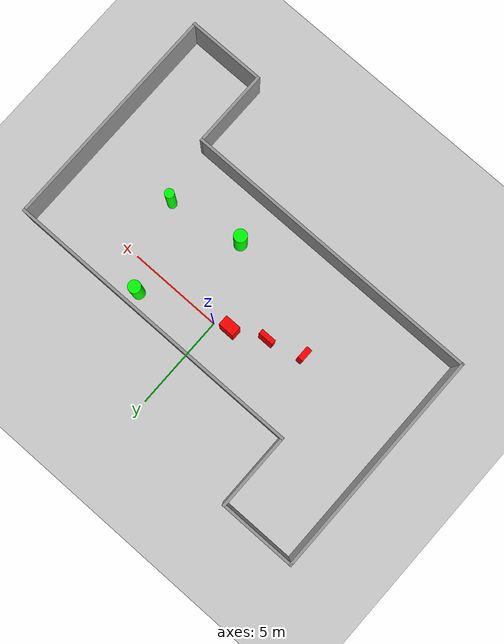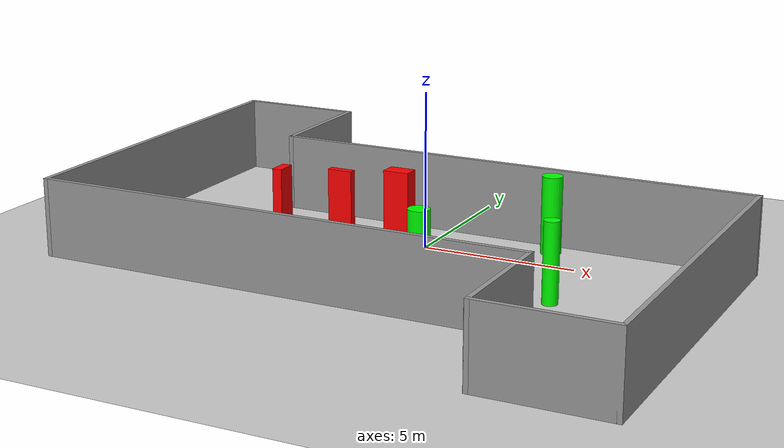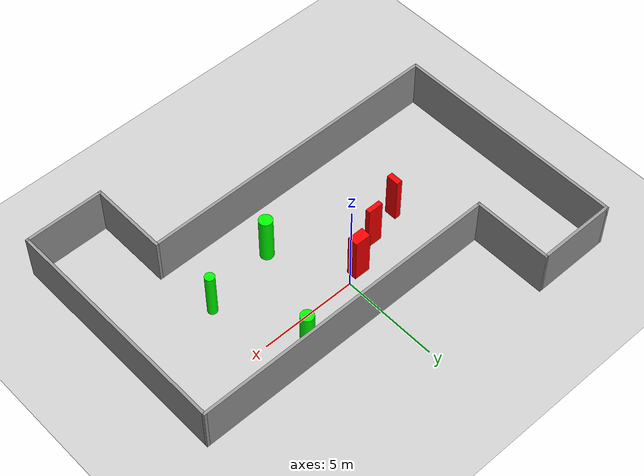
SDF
<sdf version="1.7">
 <world name="default">
  <light name="sun" type="directional">
   <pose>0 0 10 0 -0 0</pose>
   <diffuse>0.8 0.8 0.8 1</diffuse>
   <specular>0.2 0.2 0.2 1</specular>
   <attenuation>
    <range>1000</range>
    <constant>0.9</constant>
    <linear>0.01</linear>
    <quadratic>0.001</quadratic>
   </attenuation>
   <direction>-0.5 0.1 -0.9</direction>
   <spot><inner_angle>0</inner_angle><outer_angle>0</outer_angle><falloff>0</falloff></spot>
  </light>
  <model name="ground_plane">
   <static>1</static>
   <link name="link">
    <collision name="collision">
     <geometry><plane><normal>0 0 1</normal><size>100 100</size></plane></geometry>
     <surface>
      <contact><collide_bitmask>65535</collide_bitmask></contact>
      <friction><ode><mu>100</mu><mu2>50</mu2></ode></friction>
     </surface>
    </collision>
    <visual name="visual">
     <cast_shadows>0</cast_shadows>
     <geometry><plane><normal>0 0 1</normal><size>100 100</size></plane></geometry>
     <material>
      <script><uri>file://media/materials/scripts/gazebo.material</uri><name>Gazebo/Grey</name></script>
     </material>
    </visual>
   </link>
  </model>
  <gravity>0 0 -9.8</gravity>
  <magnetic_field>6e-06 2.3e-05 -4.2e-05</magnetic_field>
  <atmosphere type="adiabatic"/>
  <physics type="ode">
   <max_step_size>0.001</max_step_size>
   <real_time_factor>1</real_time_factor>
   <real_time_update_rate>1000</real_time_update_rate>
  </physics>
  <scene><ambient>0.4 0.4 0.4 1</ambient><background>0.7 0.7 0.7 1</background><shadows>1</shadows></scene>
  <spherical_coordinates>
   <surface_model>EARTH_WGS84</surface_model>
   <latitude_deg>0</latitude_deg>
   <longitude_deg>0</longitude_deg>
   <elevation>0</elevation>
   <heading_deg>0</heading_deg>
  </spherical_coordinates>
  <model name="my_base_walls">
   <link name="Wall_13">
    <collision name="Wall_13_Collision">
     <geometry><box><size>12.15 0.15 2.5</size></box></geometry>
     <pose>0 0 1.25 0 -0 0</pose>
    </collision>
    <visual name="Wall_13_Visual">
     <pose>0 0 1.25 0 -0 0</pose>
     <geometry><box><size>12.15 0.15 2.5</size></box></geometry>
     <material>
      <script><uri>file://media/materials/scripts/gazebo.material</uri><name>Gazebo/Grey</name></script>
      <ambient>1 1 1 1</ambient>
     </material>
     <meta><layer>0</layer></meta>
    </visual>
    <pose>10 -2 0 0 -0 1.5708</pose>
   </link>
   <link name="Wall_15">
    <collision name="Wall_15_Collision">
     <geometry><box><size>16.15 0.15 2.5</size></box></geometry>
     <pose>0 0 1.25 0 -0 0</pose>
    </collision>
    <visual name="Wall_15_Visual">
     <pose>0 0 1.25 0 -0 0</pose>
     <geometry><box><size>16.15 0.15 2.5</size></box></geometry>
     <material>
      <script><uri>file://media/materials/scripts/gazebo.material</uri><name>Gazebo/Grey</name></script>
      <ambient>1 1 1 1</ambient>
     </material>
     <meta><layer>0</layer></meta>
    </visual>
    <pose>2 4 0 0 -0 3.14159</pose>
   </link>
   <link name="Wall_17">
    <collision name="Wall_17_Collision">
     <geometry><box><size>4.15 0.15 2.5</size></box></geometry>
     <pose>0 0 1.25 0 -0 0</pose>
    </collision>
    <visual name="Wall_17_Visual">
     <pose>0 0 1.25 0 -0 0</pose>
     <geometry><box><size>4.15 0.15 2.5</size></box></geometry>
     <material>
      <script><uri>file://media/materials/scripts/gazebo.material</uri><name>Gazebo/Grey</name></script>
      <ambient>1 1 1 1</ambient>
     </material>
     <meta><layer>0</layer></meta>
    </visual>
    <pose>6 -6 0 0 -0 -1.5708</pose>
   </link>
   <link name="Wall_19">
    <collision name="Wall_19_Collision">
     <geometry><box><size>12.15 0.15 2.5</size></box></geometry>
     <pose>0 0 1.25 0 -0 0</pose>
    </collision>
    <visual name="Wall_19_Visual">
     <pose>0 0 1.25 0 -0 0</pose>
     <geometry><box><size>12.15 0.15 2.5</size></box></geometry>
     <material>
      <script><uri>file://media/materials/scripts/gazebo.material</uri><name>Gazebo/Grey</name></script>
      <ambient>1 1 1 1</ambient>
     </material>
     <meta><layer>0</layer></meta>
    </visual>
    <pose>-10 2 0 0 -0 1.5708</pose>
   </link>
   <link name="Wall_21">
    <collision name="Wall_21_Collision">
     <geometry><box><size>4.15 0.15 2.5</size></box></geometry>
     <pose>0 0 1.25 0 -0 0</pose>
    </collision>
    <visual name="Wall_21_Visual">
     <pose>0 0 1.25 0 -0 0</pose>
     <geometry><box><size>4.15 0.15 2.5</size></box></geometry>
     <material>
      <script><uri>file://media/materials/scripts/gazebo.material</uri><name>Gazebo/Grey</name></script>
      <ambient>1 1 1 1</ambient>
     </material>
     <meta><layer>0</layer></meta>
    </visual>
    <pose>-8 8 0 0 -0 0</pose>
   </link>
   <link name="Wall_23">
    <collision name="Wall_23_Collision">
     <geometry><box><size>4.15 0.15 2.5</size></box></geometry>
     <pose>0 0 1.25 0 -0 0</pose>
    </collision>
    <visual name="Wall_23_Visual">
     <pose>0 0 1.25 0 -0 0</pose>
     <geometry><box><size>4.15 0.15 2.5</size></box></geometry>
     <material>
      <script><uri>file://media/materials/scripts/gazebo.material</uri><name>Gazebo/Grey</name></script>
      <ambient>1 1 1 1</ambient>
     </material>
     <meta><layer>0</layer></meta>
    </visual>
    <pose>-6 6 0 0 -0 -1.5708</pose>
   </link>
   <link name="Wall_25">
    <collision name="Wall_25_Collision">
     <geometry><box><size>4.15 0.15 2.5</size></box></geometry>
     <pose>0 0 1.25 0 -0 0</pose>
    </collision>
    <visual name="Wall_25_Visual">
     <pose>0 0 1.25 0 -0 0</pose>
     <geometry><box><size>4.15 0.15 2.5</size></box></geometry>
     <material>
      <script><uri>file://media/materials/scripts/gazebo.material</uri><name>Gazebo/Grey</name></script>
      <ambient>1 1 1 1</ambient>
     </material>
     <meta><layer>0</layer></meta>
    </visual>
    <pose>8 -8 0 0 -0 0</pose>
   </link>
   <link name="Wall_9">
    <collision name="Wall_9_Collision">
     <geometry><box><size>16.15 0.15 2.5</size></box></geometry>
     <pose>0 0 1.25 0 -0 0</pose>
    </collision>
    <visual name="Wall_9_Visual">
     <pose>0 0 1.25 0 -0 0</pose>
     <geometry><box><size>16.15 0.15 2.5</size></box></geometry>
     <material>
      <script><uri>file://media/materials/scripts/gazebo.material</uri><name>Gazebo/Grey</name></script>
      <ambient>1 1 1 1</ambient>
     </material>
     <meta><layer>0</layer></meta>
    </visual>
    <pose>-2 -4 0 0 -0 3.14159</pose>
   </link>
   <static>1</static>
   <pose>-0 -2 0 0 -0 0</pose>
  </model>
  <model name="cylinder1">
   <static>1</static>
   <link name="link">
    <inertial>
     <mass>1</mass>
     <inertia><ixx>0.5</ixx><ixy>0</ixy><ixz>0</ixz><iyy>0.5</iyy><iyz>0</iyz><izz>1</izz></inertia>
    </inertial>
    <collision name="collision">
     <geometry><cylinder><radius>0.24292780252079896</radius><length>2.5</length></cylinder></geometry>
    </collision>
    <visual name="visual">
     <geometry><cylinder><radius>0.24292780252079896</radius><length>2.5</length></cylinder></geometry>
     <material>
      <ambient>0 1 0 1</ambient>
      <diffuse>0 1 0 1</diffuse>
      <specular>0.1 0.1 0.1 1</specular>
      <emissive>0 0 0 0</emissive>
     </material>
    </visual>
   </link>
   <pose>5.44232578930327 -3.0691274961870283 1.25 0 0 0</pose>
  </model>
  <model name="cylinder2">
   <static>1</static>
   <link name="link">
    <inertial>
     <mass>1</mass>
     <inertia><ixx>0.5</ixx><ixy>0</ixy><ixz>0</ixz><iyy>0.5</iyy><iyz>0</iyz><izz>1</izz></inertia>
    </inertial>
    <collision name="collision">
     <geometry><cylinder><radius>0.33869346215106433</radius><length>2.5</length></cylinder></geometry>
    </collision>
    <visual name="visual">
     <geometry><cylinder><radius>0.33869346215106433</radius><length>2.5</length></cylinder></geometry>
     <material>
      <ambient>0 1 0 1</ambient>
      <diffuse>0 1 0 1</diffuse>
      <specular>0.1 0.1 0.1 1</specular>
      <emissive>0 0 0 0</emissive>
     </material>
    </visual>
   </link>
   <pose>1.6153682254896031 -3.7646814064593848 1.25 0 0 0</pose>
  </model>
  <model name="cylinder3">
   <static>1</static>
   <link name="link">
    <inertial>
     <mass>1</mass>
     <inertia><ixx>0.5</ixx><ixy>0</ixy><ixz>0</ixz><iyy>0.5</iyy><iyz>0</iyz><izz>1</izz></inertia>
    </inertial>
    <collision name="collision">
     <geometry><cylinder><radius>0.3257460200702094</radius><length>2.5</length></cylinder></geometry>
    </collision>
    <visual name="visual">
     <geometry><cylinder><radius>0.3257460200702094</radius><length>2.5</length></cylinder></geometry>
     <material>
      <ambient>0 1 0 1</ambient>
      <diffuse>0 1 0 1</diffuse>
      <specular>0.1 0.1 0.1 1</specular>
      <emissive>0 0 0 0</emissive>
     </material>
    </visual>
   </link>
   <pose>3.733301639598624 1.2771108374629812 1.25 0 0 0</pose>
  </model>
  <model name="box1">
   <static>1</static>
   <link name="link">
    <inertial>
     <mass>1</mass>
     <inertia><ixx>0.083</ixx><ixy>0</ixy><ixz>0</ixz><iyy>0.083</iyy><iyz>0</iyz><izz>0.083</izz></inertia>
    </inertial>
    <collision name="collision">
     <geometry><box><size>0.8420015228084117 0.5367748580917884 2.5</size></box></geometry>
    </collision>
    <visual name="visual">
     <geometry><box><size>0.8420015228084117 0.5367748580917884 2.5</size></box></geometry>
     <material>
      <ambient>1 0 0 1</ambient>
      <diffuse>1 0 0 1</diffuse>
      <specular>0.1 0.1 0.1 1</specular>
      <emissive>0 0 0 0</emissive>
     </material>
    </visual>
    <sensor name="my_contact" type="contact">
     <contact><collision>box_collision</collision><topic>__default_topic__</topic></contact>
    </sensor>
   </link>
   <pose>-0.7830659545212892 -0.27432058945014326 1.25 0 0 0</pose>
  </model>
  <model name="box2">
   <static>1</static>
   <link name="link">
    <inertial>
     <mass>1</mass>
     <inertia><ixx>0.083</ixx><ixy>0</ixy><ixz>0</ixz><iyy>0.083</iyy><iyz>0</iyz><izz>0.083</izz></inertia>
    </inertial>
    <collision name="collision">
     <geometry><box><size>0.3134985915583687 0.6571724620771727 2.5</size></box></geometry>
    </collision>
    <visual name="visual">
     <geometry><box><size>0.3134985915583687 0.6571724620771727 2.5</size></box></geometry>
     <material>
      <ambient>1 0 0 1</ambient>
      <diffuse>1 0 0 1</diffuse>
      <specular>0.1 0.1 0.1 1</specular>
      <emissive>0 0 0 0</emissive>
     </material>
    </visual>
    <sensor name="my_contact" type="contact">
     <contact><collision>box_collision</collision><topic>__default_topic__</topic></contact>
    </sensor>
   </link>
   <pose>-4.248274625662059 -1.5948125329758147 1.25 0 0 0</pose>
  </model>
  <model name="box3">
   <static>1</static>
   <link name="link">
    <inertial>
     <mass>1</mass>
     <inertia><ixx>0.083</ixx><ixy>0</ixy><ixz>0</ixz><iyy>0.083</iyy><iyz>0</iyz><izz>0.083</izz></inertia>
    </inertial>
    <collision name="collision">
     <geometry><box><size>0.806821073581456 0.2491263713220193 2.5</size></box></geometry>
    </collision>
    <visual name="visual">
     <geometry><box><size>0.806821073581456 0.2491263713220193 2.5</size></box></geometry>
     <material>
      <ambient>1 0 0 1</ambient>
      <diffuse>1 0 0 1</diffuse>
      <specular>0.1 0.1 0.1 1</specular>
      <emissive>0 0 0 0</emissive>
     </material>
    </visual>
    <sensor name="my_contact" type="contact">
     <contact><collision>box_collision</collision><topic>__default_topic__</topic></contact>
    </sensor>
   </link>
   <pose>-2.429175529045091 -1.0393797430729776 1.25 0 0 0</pose>
  </model>
 </world>
</sdf>
